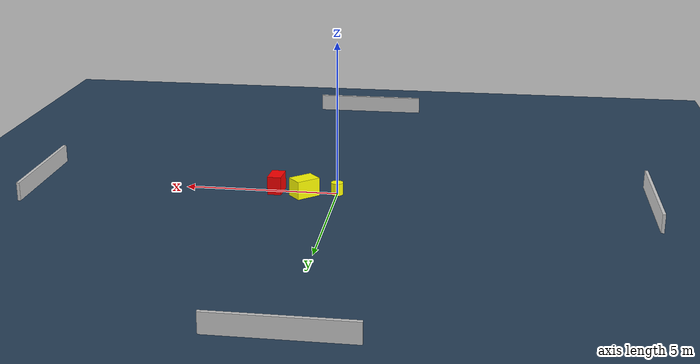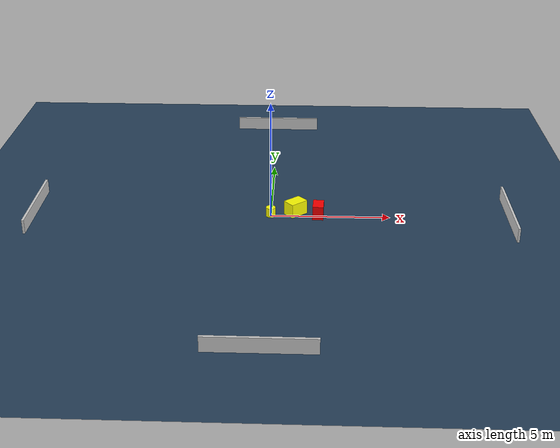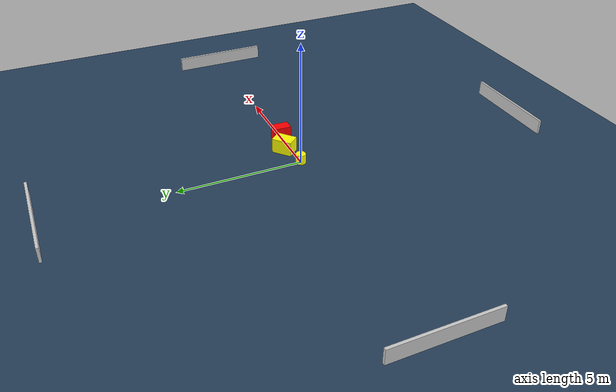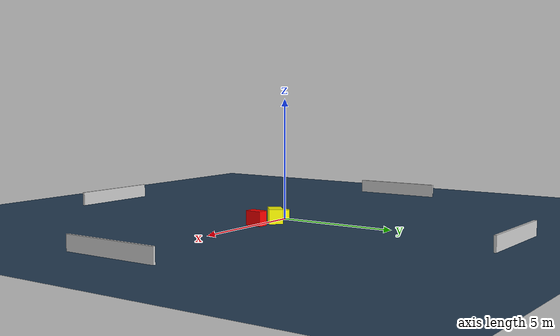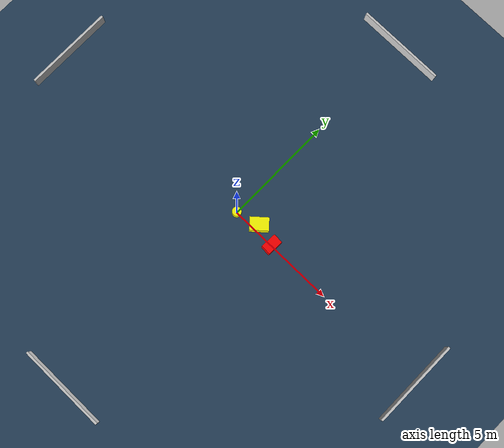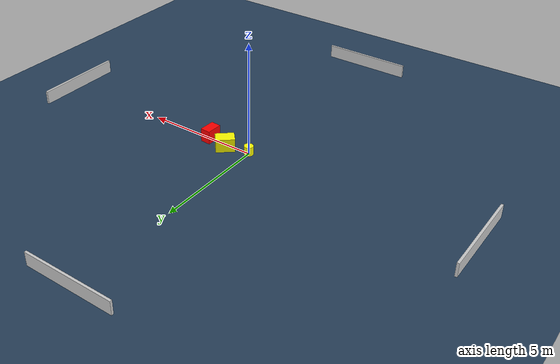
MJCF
<?xml version="1.0" ?>
<mujoco model="generated_environment">
  <option timestep="0.01" integrator="RK4" cone="elliptic"/>
  <default>
    <geom density="1"/>
  </default>
  <asset>
    <texture builtin="gradient" height="3072" name="skybox" rgb1="0.3 0.5 0.7" rgb2="0 0 0" type="skybox" width="512"/>
    <texture builtin="checker" height="300" name="groundplane" rgb1="0.2 0.3 0.4" rgb2="0.1 0.2 0.3" type="2d" width="300"/>
    <material name="groundplane" reflectance="0.2" texrepeat="5 5" texture="groundplane"/>
  </asset>
  <worldbody>
    <light dir="0 0 -1" directional="true" pos="0 0 1.5"/>
    <geom condim="3" friction="0.5 0.005 0.001" material="groundplane" name="floor" pos="0 0 0" size="0 0 0.05" type="plane"/>
    <body name="walls">
      <geom name="wall_1" condim="4" pos="-10.0 0.0 0.3" rgba="0.800000011920929 0.800000011920929 0.800000011920929 1.0" size="0.05 2.0 0.3" type="box"/>
      <geom name="wall_2" condim="4" pos="10.0 0.0 0.3" rgba="0.800000011920929 0.800000011920929 0.800000011920929 1.0" size="0.05 2.0 0.3" type="box"/>
      <geom name="wall_3" condim="4" pos="0.0 -10.0 0.3" rgba="0.800000011920929 0.800000011920929 0.800000011920929 1.0" size="2.0 0.05 0.3" type="box"/>
      <geom name="wall_4" condim="4" pos="0.0 10.0 0.3" rgba="0.800000011920929 0.800000011920929 0.800000011920929 1.0" size="2.0 0.05 0.3" type="box"/>
    </body>
    <body name="robot">
      <joint name="joint_x" type="slide" pos="0 0 0" axis="1 0 0"/>
      <joint name="joint_y" type="slide" pos="0 0 0" axis="0 1 0"/>
      <geom name="robot" type="cylinder" pos="0.0 0.0 0.2" size="0.2 0.2 0.0" mass="5.0" friction="1.0 0.005 0.0001" condim="4" rgba="1.0 1.0 0.0 1.0"/>
    </body>
    <body name="obstacle_1_movable">
      <geom name="obstacle_1_movable" condim="4" pos="1.0394461497176182 0.25968293423472577 0.3" euler="0 0 311.0685166440783" friction="0.0 0.005 0.001" rgba="1.0 1.0 0.0 1.0" size="0.280694217814558 0.4072329545541588 0.3" type="box" mass="0.1"/>
      <joint type="free"/>
    </body>
    <body name="obstacle_2_static">
      <geom name="obstacle_2_static" condim="4" pos="1.9972223768604258 0.01197590889201907 0.3" euler="0 0 176.9968591769608" friction="0.0 0.005 0.001" rgba="1.0 0.0 0.0 1.0" size="0.2237301953246637 0.35600843708201835 0.3" type="box"/>
    </body>
  </worldbody>
  <actuator>
    <motor name="actuator_x" joint="joint_x" gear="1" ctrlrange="-1 1"/>
    <motor name="actuator_y" joint="joint_y" gear="1" ctrlrange="-1 1"/>
  </actuator>
</mujoco>
